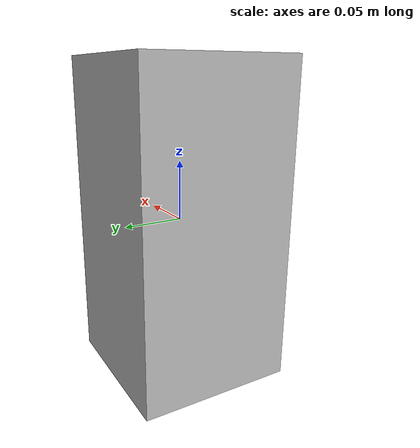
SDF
<?xml version="1.0"?>
<!-- Componente "prensa" de la biblioteca del contrato 2.0. Origen = centro geométrico. -->
<sdf version="1.9"><model name='prensa'><static>true</static><link name='link'><collision name='c'><geometry><box><size>0.13 0.13 0.265</size></box></geometry></collision><visual name='v'><geometry><box><size>0.13 0.13 0.265</size></box></geometry><material><ambient>0.7 0.7 0.7 1</ambient><diffuse>0.7 0.7 0.7 1</diffuse></material></visual></link></model></sdf>
